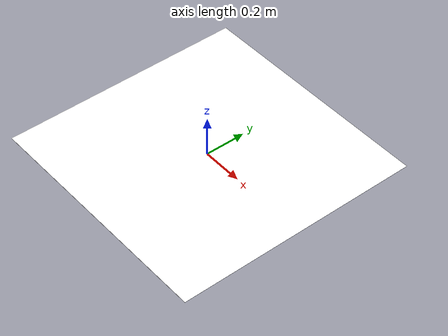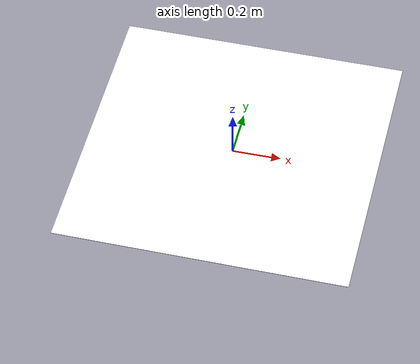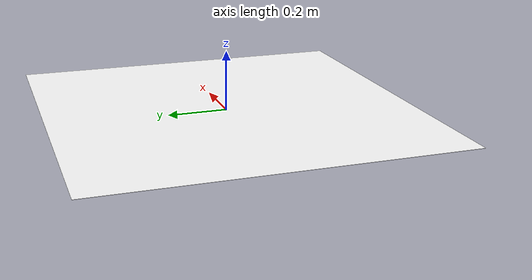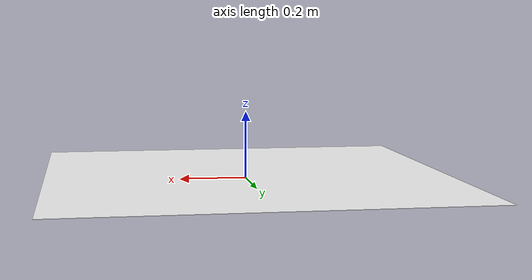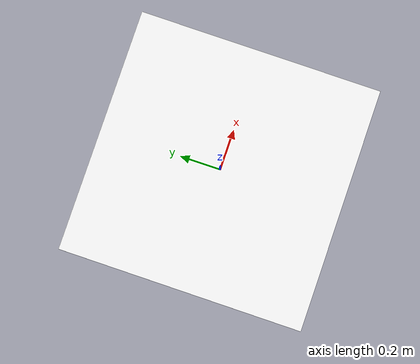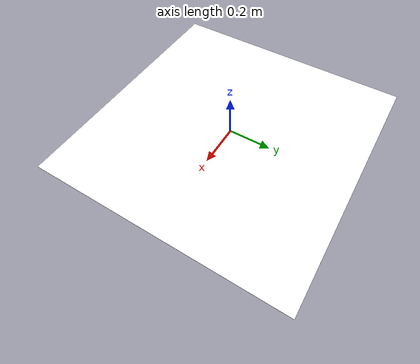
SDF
<?xml version="1.0" encoding="UTF-8"?>
<sdf version="1.9">
  <model name="qr_model_6">
    <static>true</static>
    <pose>0 0 0.01 -1.57079632679 0 0</pose>
    <link name="link">
      <visual name="visual">
        <cast_shadows>false</cast_shadows>
        <geometry>
          <plane>
            <normal>0 -1 0</normal>
            <size>1.2 1.2</size>
          </plane>
        </geometry>
        <material>
          <ambient>1.0 1.0 1.0 1.0</ambient>
          <diffuse>1.0 1.0 1.0 1.0</diffuse>
          <specular>0.0 0.0 0.0 1.0</specular>
          <emissive>0.0 0.0 0.0 1.0</emissive>
          <pbr>
            <metal>
              <albedo_map>model://qr_model_6/materials/textures/qr_6.png</albedo_map>
              <metalness>0.0</metalness>
              <roughness>1.0</roughness>
            </metal>
          </pbr>
        </material>
      </visual>
    </link>
  </model>
</sdf>
